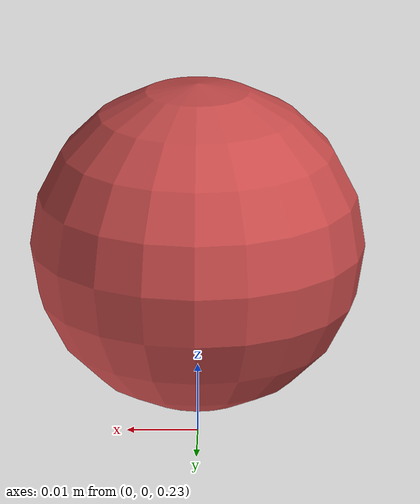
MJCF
<mujoco model="tap_000">
  <option timestep="0.001" gravity="0 0 -9.81"/>

  <visual>
    <headlight ambient="0.5 0.5 0.5"/>
  </visual>

  <asset>
    <texture name="grid" type="2d" builtin="checker" width="512" height="512" rgb1="0.2 0.3 0.4" rgb2="0.3 0.4 0.5"/>
    <material name="grid" texture="grid" texrepeat="1 1" reflectance="0.2"/>
    <material name="finger" rgba="0.8 0.3 0.3 1.0"/>
  </asset>

  <worldbody>
    <!-- Ground plane -->
    <geom name="floor" type="plane" size="2 2 0.1" material="grid"
          condim="6" friction="0.5097002223565862 0.005 0.0001" solref="0.02 1.318087862549288"/>

    <!-- Sphere -->
    <body name="fingertip" pos="0 0 0.2579651960575486">
      <freejoint/>
      <geom name="finger" type="sphere" size="0.023443379642253355" mass="0.08668746995274279" material="finger"
            condim="6" friction="0.5097002223565862 0.005 0.0001" solref="0.02 1.318087862549288"/>
      <site name="contact_site" pos="0 0 0" size="0.001"/>
    </body>
  </worldbody>

  <sensor>
    <touch name="finger_touch" site="contact_site"/>
    <framepos name="finger_pos" objtype="site" objname="contact_site"/>
    <framequat name="finger_quat" objtype="site" objname="contact_site"/>
    <framelinvel name="finger_vel" objtype="site" objname="contact_site"/>
  </sensor>
</mujoco>
